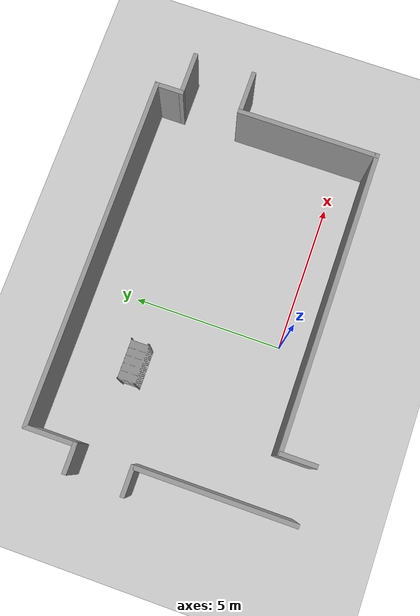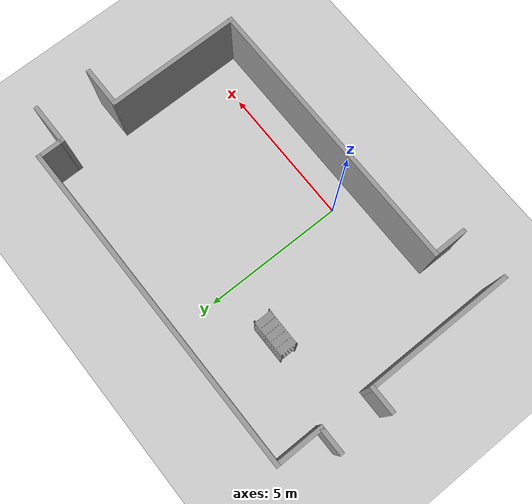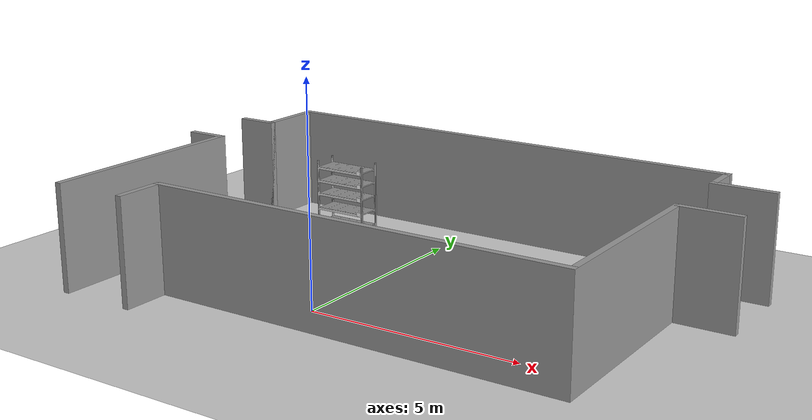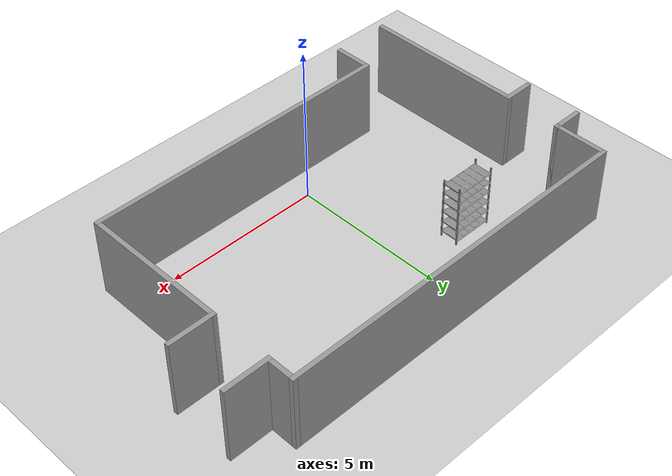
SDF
<sdf version="1.7">
 <world name="default">
  <model name="ground_plane">
   <static>1</static>
   <link name="link">
    <collision name="collision">
     <geometry><plane><normal>0 0 1</normal><size>100 100</size></plane></geometry>
     <surface><friction><ode><mu>100</mu><mu2>50</mu2></ode></friction></surface>
    </collision>
    <visual name="visual">
     <cast_shadows>0</cast_shadows>
     <geometry><plane><normal>0 0 1</normal><size>100 100</size></plane></geometry>
     <material>
      <script><uri>file://media/materials/scripts/gazebo.material</uri><name>Gazebo/Grey</name></script>
     </material>
    </visual>
   </link>
  </model>
  <model name="shelf_6_r2_c1">
   <static>1</static>
   <link name="link">
    <collision name="collision">
     <geometry>
      <mesh><uri>model://shelf_6/meshes/shelf_6.dae</uri><scale>0.001 0.001 0.001</scale></mesh>
     </geometry>
    </collision>
    <visual name="visual">
     <geometry>
      <mesh><uri>model://shelf_6/meshes/shelf_6.dae</uri><scale>0.001 0.001 0.001</scale></mesh>
     </geometry>
    </visual>
   </link>
   <pose>-1.5 4.5 0 0 -0 0</pose>
  </model>
  <model name="stag_r2c1_l1">
   <static>1</static>
   <pose>-1.6 3.9 0.146 1.5708 -0 0</pose>
   <link name="marker_link">
    <collision name="collision"><geometry><box><size>0.1 0.1 0.01</size></box></geometry></collision>
    <visual name="visual">
     <geometry><box><size>0.1 0.1 0.01</size></box></geometry>
     <material>
      <script>
       <uri>model://STag_marker/materials/scripts</uri>
       <uri>model://STag_marker/materials/textures</uri>
       <name>STagMarker/marker_01509</name>
      </script>
      <ambient>1 1 1 1</ambient>
      <diffuse>1 1 1 1</diffuse>
     </material>
     <pose>0 0 0.001 0 -0 0</pose>
    </visual>
   </link>
  </model>
  <model name="stag_r2c1_l2">
   <static>1</static>
   <pose>-1.6 3.9 0.506 1.5708 -0 0</pose>
   <link name="marker_link">
    <collision name="collision"><geometry><box><size>0.1 0.1 0.01</size></box></geometry></collision>
    <visual name="visual">
     <geometry><box><size>0.1 0.1 0.01</size></box></geometry>
     <material>
      <script>
       <uri>model://STag_marker/materials/scripts</uri>
       <uri>model://STag_marker/materials/textures</uri>
       <name>STagMarker/marker_01579</name>
      </script>
      <ambient>1 1 1 1</ambient>
      <diffuse>1 1 1 1</diffuse>
     </material>
     <pose>0 0 0.001 0 -0 0</pose>
    </visual>
   </link>
  </model>
  <model name="stag_r2c1_l3">
   <static>1</static>
   <pose>-1.6 3.9 0.867 1.5708 -0 0</pose>
   <link name="marker_link">
    <collision name="collision"><geometry><box><size>0.1 0.1 0.01</size></box></geometry></collision>
    <visual name="visual">
     <geometry><box><size>0.1 0.1 0.01</size></box></geometry>
     <material>
      <script>
       <uri>model://STag_marker/materials/scripts</uri>
       <uri>model://STag_marker/materials/textures</uri>
       <name>STagMarker/marker_01603</name>
      </script>
      <ambient>1 1 1 1</ambient>
      <diffuse>1 1 1 1</diffuse>
     </material>
     <pose>0 0 0.001 0 -0 0</pose>
    </visual>
   </link>
  </model>
  <model name="stag_r2c1_l4">
   <static>1</static>
   <pose>-1.6 3.9 1.227 1.5708 -0 0</pose>
   <link name="marker_link">
    <collision name="collision"><geometry><box><size>0.1 0.1 0.01</size></box></geometry></collision>
    <visual name="visual">
     <geometry><box><size>0.1 0.1 0.01</size></box></geometry>
     <material>
      <script>
       <uri>model://STag_marker/materials/scripts</uri>
       <uri>model://STag_marker/materials/textures</uri>
       <name>STagMarker/marker_01630</name>
      </script>
      <ambient>1 1 1 1</ambient>
      <diffuse>1 1 1 1</diffuse>
     </material>
     <pose>0 0 0.001 0 -0 0</pose>
    </visual>
   </link>
  </model>
  <model name="stag_r2c1_l5">
   <static>1</static>
   <pose>-1.6 3.9 1.556 1.5708 -0 0</pose>
   <link name="marker_link">
    <collision name="collision"><geometry><box><size>0.1 0.1 0.01</size></box></geometry></collision>
    <visual name="visual">
     <geometry><box><size>0.1 0.1 0.01</size></box></geometry>
     <material>
      <script>
       <uri>model://STag_marker/materials/scripts</uri>
       <uri>model://STag_marker/materials/textures</uri>
       <name>STagMarker/marker_01654</name>
      </script>
      <ambient>1 1 1 1</ambient>
      <diffuse>1 1 1 1</diffuse>
     </material>
     <pose>0 0 0.001 0 -0 0</pose>
    </visual>
   </link>
  </model>
  <model name="stag_r2c1_l6">
   <static>1</static>
   <pose>-1.6 3.9 1.886 1.5708 -0 0</pose>
   <link name="marker_link">
    <collision name="collision"><geometry><box><size>0.1 0.1 0.01</size></box></geometry></collision>
    <visual name="visual">
     <geometry><box><size>0.1 0.1 0.01</size></box></geometry>
     <material>
      <script>
       <uri>model://STag_marker/materials/scripts</uri>
       <uri>model://STag_marker/materials/textures</uri>
       <name>STagMarker/marker_01690</name>
      </script>
      <ambient>1 1 1 1</ambient>
      <diffuse>1 1 1 1</diffuse>
     </material>
     <pose>0 0 0.001 0 -0 0</pose>
    </visual>
   </link>
  </model>
  <model name="walls">
   <pose>0.918506 2.24614 0 0 -0 0</pose>
   <link name="Wall_0">
    <collision name="Wall_0_Collision">
     <geometry><box><size>10 0.15 2.5</size></box></geometry>
     <pose>0 0 1.25 0 -0 0</pose>
    </collision>
    <visual name="Wall_0_Visual">
     <pose>0 0 1.25 0 -0 0</pose>
     <geometry><box><size>10 0.15 2.5</size></box></geometry>
     <material>
      <script><uri>file://media/materials/scripts/gazebo.material</uri><name>Gazebo/Grey</name></script>
      <ambient>1 1 1 1</ambient>
     </material>
     <meta><layer>0</layer></meta>
    </visual>
    <pose>0.653269 -3.17454 0 0 -0 3.14159</pose>
   </link>
   <link name="Wall_10">
    <collision name="Wall_10_Collision">
     <geometry><box><size>0.15 0.15 2.5</size></box></geometry>
     <pose>0 0 1.25 0 -0 0</pose>
    </collision>
    <visual name="Wall_10_Visual">
     <pose>0 0 1.25 0 -0 0</pose>
     <geometry><box><size>0.15 0.15 2.5</size></box></geometry>
     <material>
      <script><uri>file://media/materials/scripts/gazebo.material</uri><name>Gazebo/Grey</name></script>
      <ambient>1 1 1 1</ambient>
     </material>
     <meta><layer>0</layer></meta>
    </visual>
    <pose>-6.02173 2.67546 0 0 -0 0</pose>
   </link>
   <link name="Wall_11">
    <collision name="Wall_11_Collision">
     <geometry><box><size>1 0.15 2.5</size></box></geometry>
     <pose>0 0 1.25 0 -0 0</pose>
    </collision>
    <visual name="Wall_11_Visual">
     <pose>0 0 1.25 0 -0 0</pose>
     <geometry><box><size>1 0.15 2.5</size></box></geometry>
     <material>
      <script><uri>file://media/materials/scripts/gazebo.material</uri><name>Gazebo/Grey</name></script>
      <ambient>1 1 1 1</ambient>
     </material>
     <meta><layer>0</layer></meta>
    </visual>
    <pose>-6.44673 2.67546 0 0 -0 3.14159</pose>
   </link>
   <link name="Wall_13">
    <collision name="Wall_13_Collision">
     <geometry><box><size>1 0.15 2.5</size></box></geometry>
     <pose>0 0 1.25 0 -0 0</pose>
    </collision>
    <visual name="Wall_13_Visual">
     <pose>0 0 1.25 0 -0 0</pose>
     <geometry><box><size>1 0.15 2.5</size></box></geometry>
     <material>
      <script><uri>file://media/materials/scripts/gazebo.material</uri><name>Gazebo/Grey</name></script>
      <ambient>1 1 1 1</ambient>
     </material>
     <meta><layer>0</layer></meta>
    </visual>
    <pose>-6.50327 0.824538 0 0 -0 0</pose>
   </link>
   <link name="Wall_14">
    <collision name="Wall_14_Collision">
     <geometry><box><size>5.25 0.15 2.5</size></box></geometry>
     <pose>0 0 1.25 0 -0 0</pose>
    </collision>
    <visual name="Wall_14_Visual">
     <pose>0 0 1.25 0 -0 0</pose>
     <geometry><box><size>5.25 0.15 2.5</size></box></geometry>
     <material>
      <script><uri>file://media/materials/scripts/gazebo.material</uri><name>Gazebo/Grey</name></script>
      <ambient>1 1 1 1</ambient>
     </material>
     <meta><layer>0</layer></meta>
    </visual>
    <pose>-6.07827 -1.72546 0 0 -0 -1.5708</pose>
   </link>
   <link name="Wall_16">
    <collision name="Wall_16_Collision">
     <geometry><box><size>1.25 0.15 2.5</size></box></geometry>
     <pose>0 0 1.25 0 -0 0</pose>
    </collision>
    <visual name="Wall_16_Visual">
     <pose>0 0 1.25 0 -0 0</pose>
     <geometry><box><size>1.25 0.15 2.5</size></box></geometry>
     <material>
      <script><uri>file://media/materials/scripts/gazebo.material</uri><name>Gazebo/Grey</name></script>
      <ambient>1 1 1 1</ambient>
     </material>
     <meta><layer>0</layer></meta>
    </visual>
    <pose>-4.27173 -3.72454 0 0 -0 -1.5708</pose>
   </link>
   <link name="Wall_20">
    <collision name="Wall_20_Collision">
     <geometry><box><size>4.75 0.15 2.5</size></box></geometry>
     <pose>0 0 1.25 0 -0 0</pose>
    </collision>
    <visual name="Wall_20_Visual">
     <pose>0 0 1.25 0 -0 0</pose>
     <geometry><box><size>4.75 0.15 2.5</size></box></geometry>
     <material>
      <script><uri>file://media/materials/scripts/gazebo.material</uri><name>Gazebo/Grey</name></script>
      <ambient>1 1 1 1</ambient>
     </material>
     <meta><layer>0</layer></meta>
    </visual>
    <pose>5.57827 -0.874538 0 0 -0 1.5708</pose>
   </link>
   <link name="Wall_21">
    <collision name="Wall_21_Collision">
     <geometry><box><size>1.5 0.15 2.5</size></box></geometry>
     <pose>0 0 1.25 0 -0 0</pose>
    </collision>
    <visual name="Wall_21_Visual">
     <pose>0 0 1.25 0 -0 0</pose>
     <geometry><box><size>1.5 0.15 2.5</size></box></geometry>
     <material>
      <script><uri>file://media/materials/scripts/gazebo.material</uri><name>Gazebo/Grey</name></script>
      <ambient>1 1 1 1</ambient>
     </material>
     <meta><layer>0</layer></meta>
    </visual>
    <pose>6.25327 1.42546 0 0 -0 0</pose>
   </link>
   <link name="Wall_23">
    <collision name="Wall_23_Collision">
     <geometry><box><size>1.5 0.15 2.5</size></box></geometry>
     <pose>0 0 1.25 0 -0 0</pose>
    </collision>
    <visual name="Wall_23_Visual">
     <pose>0 0 1.25 0 -0 0</pose>
     <geometry><box><size>1.5 0.15 2.5</size></box></geometry>
     <material>
      <script><uri>file://media/materials/scripts/gazebo.material</uri><name>Gazebo/Grey</name></script>
      <ambient>1 1 1 1</ambient>
     </material>
     <meta><layer>0</layer></meta>
    </visual>
    <pose>6.25327 3.42546 0 0 -0 0</pose>
   </link>
   <link name="Wall_4">
    <collision name="Wall_4_Collision">
     <geometry><box><size>1 0.15 2.5</size></box></geometry>
     <pose>0 0 1.25 0 -0 0</pose>
    </collision>
    <visual name="Wall_4_Visual">
     <pose>0 0 1.25 0 -0 0</pose>
     <geometry><box><size>1 0.15 2.5</size></box></geometry>
     <material>
      <script><uri>file://media/materials/scripts/gazebo.material</uri><name>Gazebo/Grey</name></script>
      <ambient>1 1 1 1</ambient>
     </material>
     <meta><layer>0</layer></meta>
    </visual>
    <pose>5.57827 3.85046 0 0 -0 1.5708</pose>
   </link>
   <link name="Wall_5">
    <collision name="Wall_5_Collision">
     <geometry><box><size>11.75 0.15 2.5</size></box></geometry>
     <pose>0 0 1.25 0 -0 0</pose>
    </collision>
    <visual name="Wall_5_Visual">
     <pose>0 0 1.25 0 -0 0</pose>
     <geometry><box><size>11.75 0.15 2.5</size></box></geometry>
     <material>
      <script><uri>file://media/materials/scripts/gazebo.material</uri><name>Gazebo/Grey</name></script>
      <ambient>1 1 1 1</ambient>
     </material>
     <meta><layer>0</layer></meta>
    </visual>
    <pose>-0.221731 4.27546 0 0 -0 3.14159</pose>
   </link>
   <link name="Wall_9">
    <collision name="Wall_9_Collision">
     <geometry><box><size>1.75 0.15 2.5</size></box></geometry>
     <pose>0 0 1.25 0 -0 0</pose>
    </collision>
    <visual name="Wall_9_Visual">
     <pose>0 0 1.25 0 -0 0</pose>
     <geometry><box><size>1.75 0.15 2.5</size></box></geometry>
     <material>
      <script><uri>file://media/materials/scripts/gazebo.material</uri><name>Gazebo/Grey</name></script>
      <ambient>1 1 1 1</ambient>
     </material>
     <meta><layer>0</layer></meta>
    </visual>
    <pose>-6.02173 3.47546 0 0 -0 -1.5708</pose>
   </link>
   <static>1</static>
  </model>
 </world>
</sdf>
